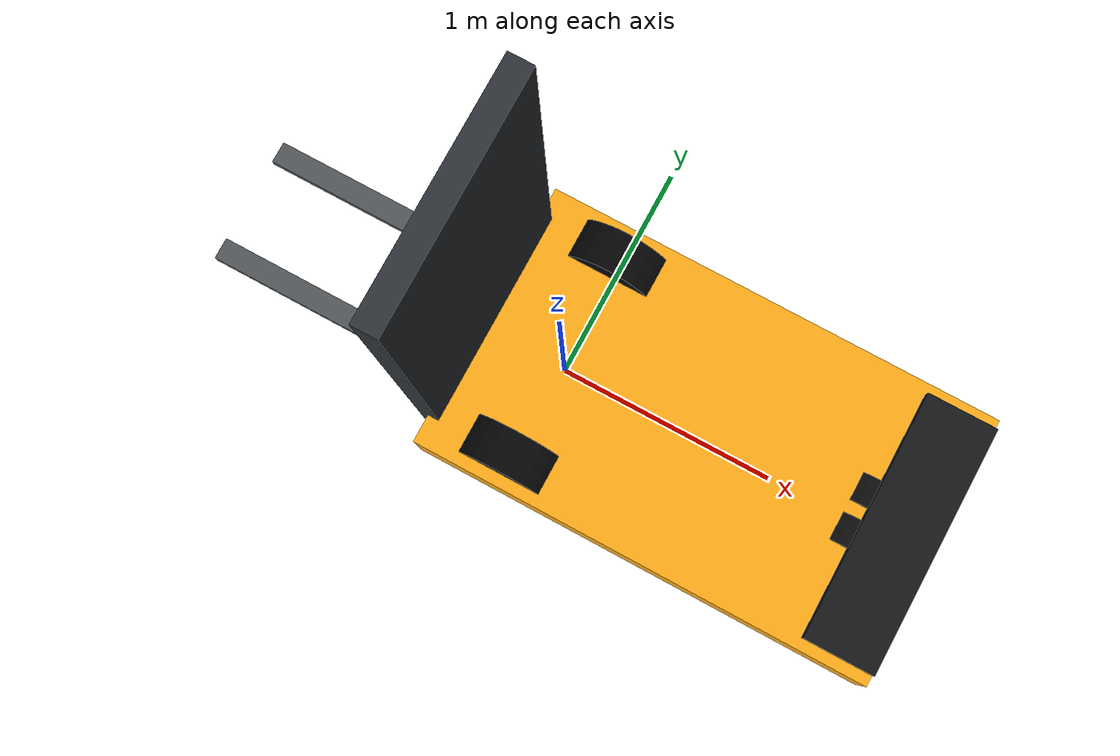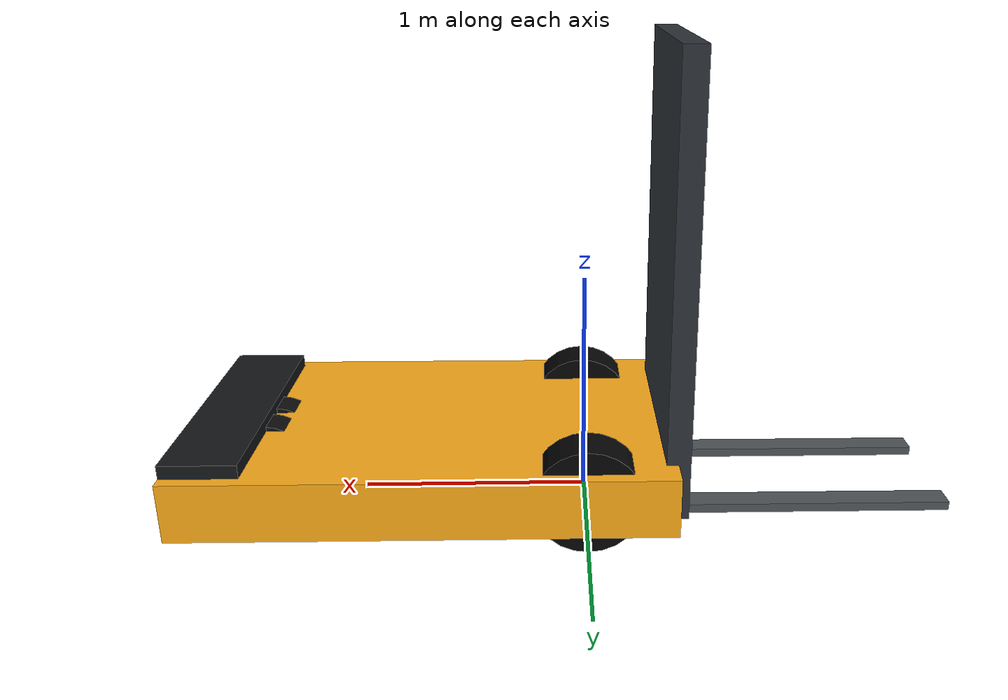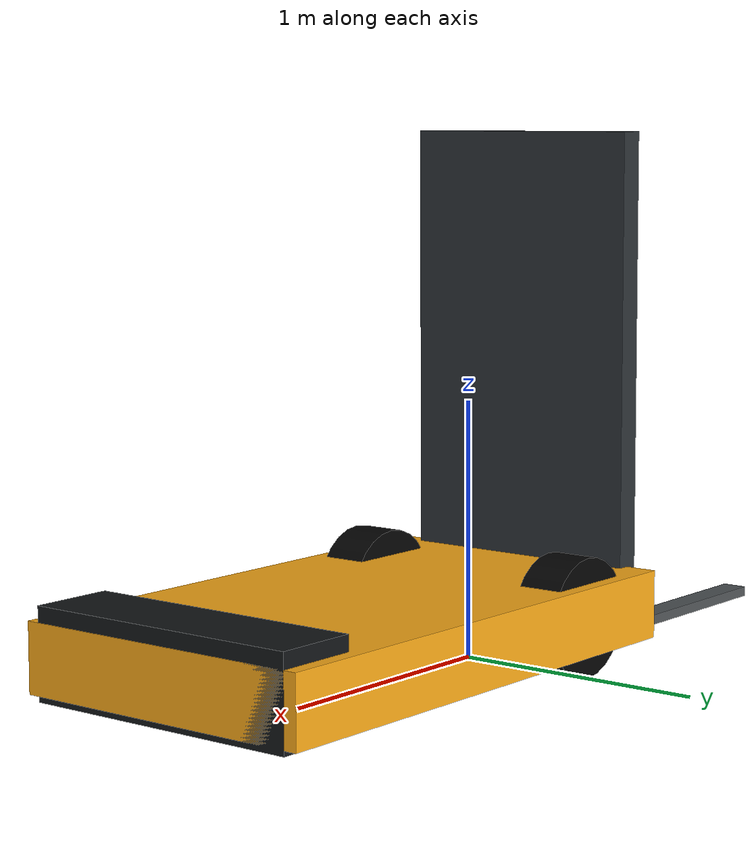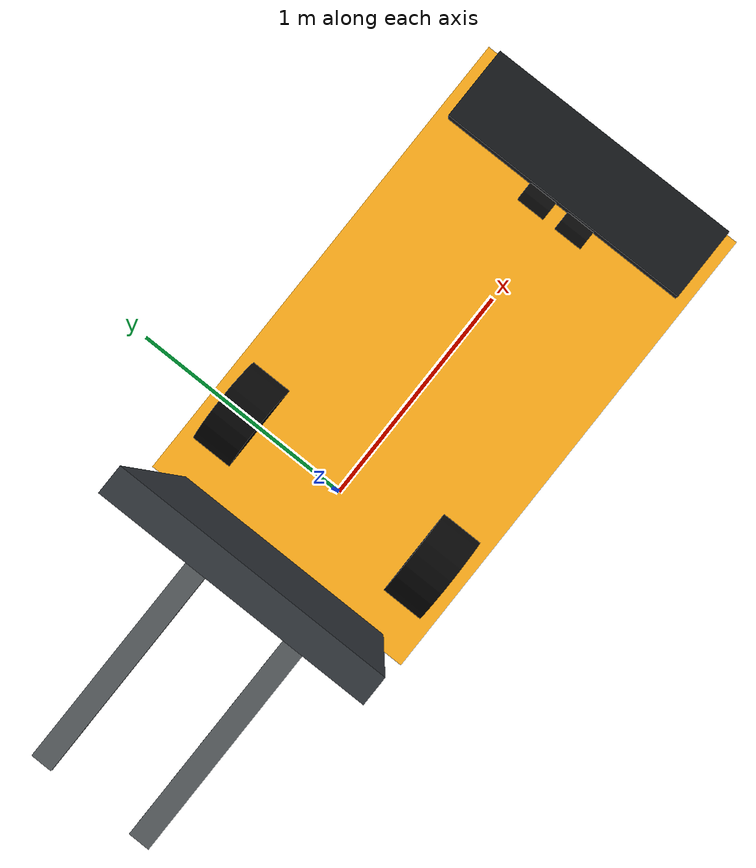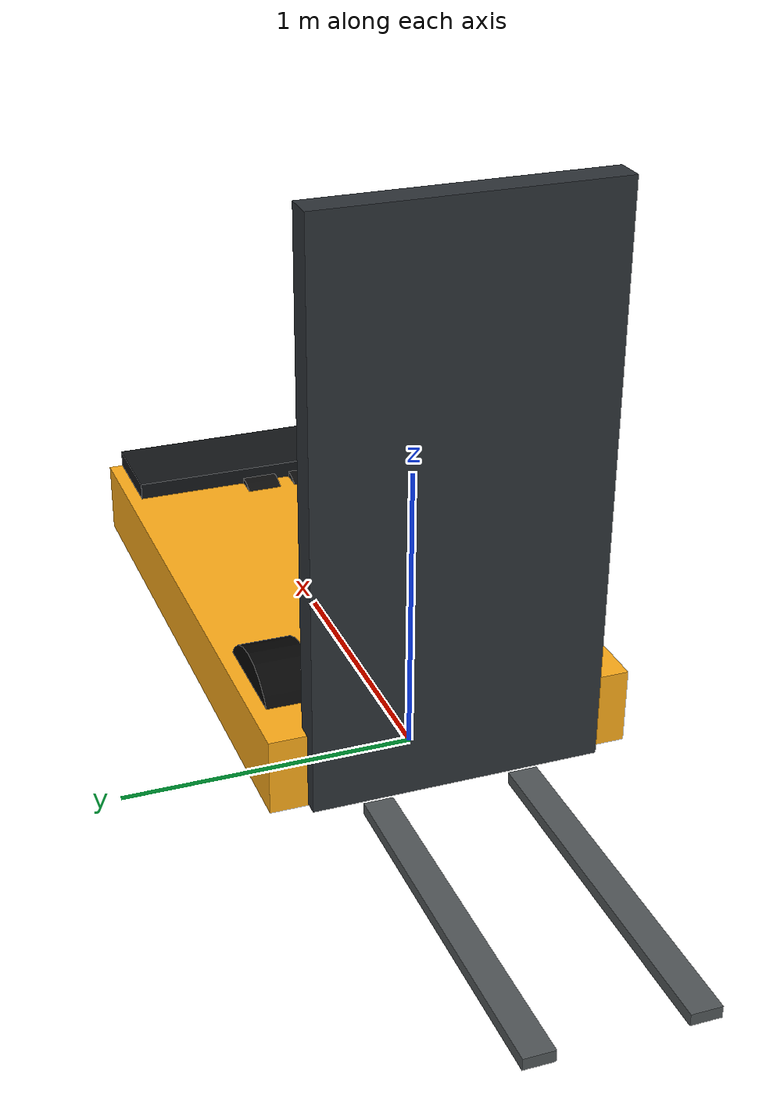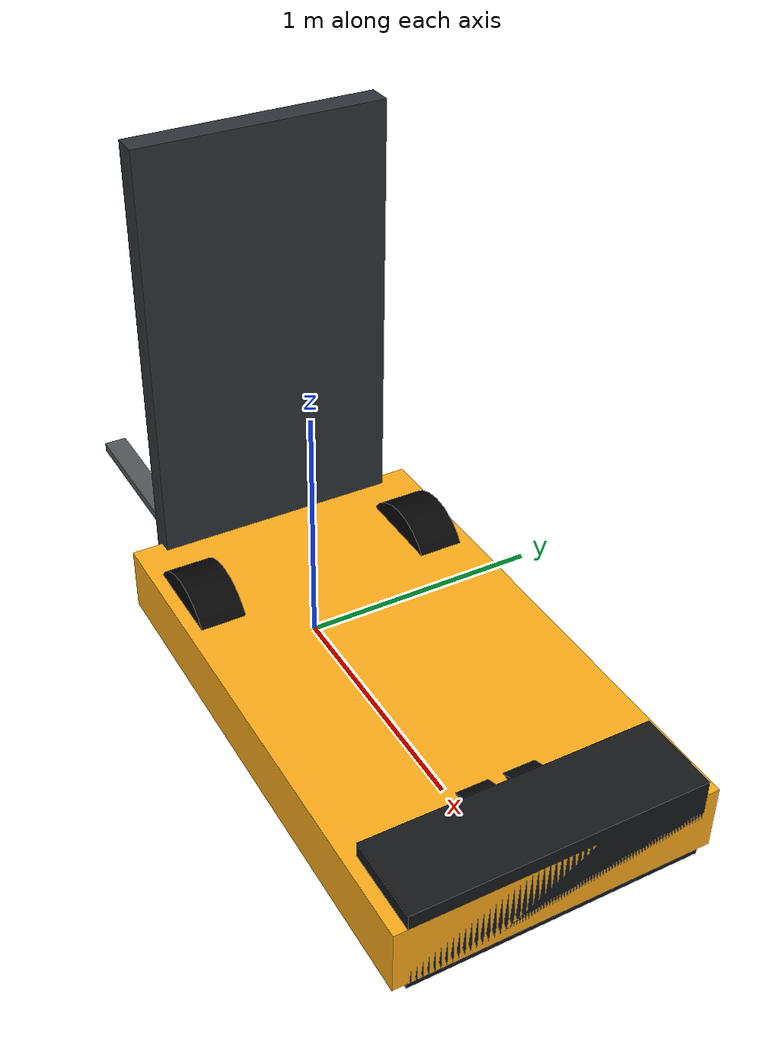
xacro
<?xml version="1.0"?>
<robot xmlns:xacro="http://www.ros.org/wiki/xacro" name="forklift_diff_drive">
  <xacro:arg name="gazebo_cmd_vel_topic" default="cmd_vel"/>
  <xacro:arg name="gazebo_scan_topic" default="scan"/>

  <!-- 2MKC20M30LV205 geometry. base_link is the drive-axle center and -X points to the forks. -->
  <xacro:property name="drive_wheel_radius" value="0.2285"/>
  <xacro:property name="drive_wheel_width" value="0.178"/>
  <xacro:property name="drive_track_width" value="0.937"/>
  <xacro:property name="support_wheel_radius" value="0.1905"/>
  <xacro:property name="support_wheel_width" value="0.127"/>
  <xacro:property name="support_track_width" value="0.183"/>
  <xacro:property name="wheel_base" value="1.40"/>
  <xacro:property name="base_z" value="${drive_wheel_radius}"/>
  <xacro:property name="body_length" value="2.079"/>
  <xacro:property name="body_width" value="1.220"/>
  <xacro:property name="body_center_x" value="0.6695"/>
  <xacro:property name="mast_x" value="-0.370"/>
  <xacro:property name="fork_length" value="1.220"/>
  <xacro:property name="fork_center_x" value="-0.980"/>

  <link name="base_footprint"/>

  <joint name="base_joint" type="fixed">
    <parent link="base_footprint"/>
    <child link="base_link"/>
    <origin xyz="0 0 ${base_z}" rpy="0 0 0"/>
  </joint>

  <link name="base_link">
    <inertial>
      <origin xyz="${body_center_x} 0 0"/>
      <mass value="28.0"/>
      <inertia ixx="1.20" ixy="0.0" ixz="0.0" iyy="3.40" iyz="0.0" izz="3.80"/>
    </inertial>
    <visual name="body_visual">
      <origin xyz="${body_center_x} 0 0" rpy="0 0 0"/>
      <geometry>
        <box size="${body_length} ${body_width} 0.26"/>
      </geometry>
      <material name="forklift_yellow">
        <color rgba="1.0 0.68 0.10 1.0"/>
      </material>
    </visual>
    <collision name="body_collision">
      <origin xyz="${body_center_x} 0 0" rpy="0 0 0"/>
      <geometry>
        <box size="${body_length} ${body_width} 0.26"/>
      </geometry>
    </collision>

    <visual name="counterweight_visual">
      <origin xyz="1.55 0 0.02" rpy="0 0 0"/>
      <geometry>
        <box size="0.318 1.12 0.34"/>
      </geometry>
      <material name="dark_gray">
        <color rgba="0.08 0.09 0.10 1.0"/>
      </material>
    </visual>
    <collision name="counterweight_collision">
      <origin xyz="1.55 0 0.02" rpy="0 0 0"/>
      <geometry>
        <box size="0.318 1.12 0.34"/>
      </geometry>
    </collision>

    <visual name="mast_visual">
      <origin xyz="${mast_x} 0 0.835" rpy="0 0 0"/>
      <geometry>
        <box size="0.10 0.97 1.917"/>
      </geometry>
      <material name="mast_gray">
        <color rgba="0.18 0.20 0.22 1.0"/>
      </material>
    </visual>
    <collision name="mast_collision">
      <origin xyz="${mast_x} 0 0.835" rpy="0 0 0"/>
      <geometry>
        <box size="0.10 0.97 1.917"/>
      </geometry>
    </collision>

    <visual name="fork_left_visual">
      <origin xyz="${fork_center_x} 0.25 -0.1885" rpy="0 0 0"/>
      <geometry>
        <box size="${fork_length} 0.10 0.04"/>
      </geometry>
      <material name="fork_gray">
        <color rgba="0.32 0.34 0.35 1.0"/>
      </material>
    </visual>
    <collision name="fork_left_collision">
      <origin xyz="${fork_center_x} 0.25 -0.1885" rpy="0 0 0"/>
      <geometry>
        <box size="${fork_length} 0.10 0.04"/>
      </geometry>
    </collision>

    <visual name="fork_right_visual">
      <origin xyz="${fork_center_x} -0.25 -0.1885" rpy="0 0 0"/>
      <geometry>
        <box size="${fork_length} 0.10 0.04"/>
      </geometry>
      <material name="fork_gray"/>
    </visual>
    <collision name="fork_right_collision">
      <origin xyz="${fork_center_x} -0.25 -0.1885" rpy="0 0 0"/>
      <geometry>
        <box size="${fork_length} 0.10 0.04"/>
      </geometry>
    </collision>
  </link>

  <link name="left_wheel_link">
    <inertial>
      <origin xyz="0 0 0"/>
      <mass value="2.0"/>
      <inertia ixx="0.018" ixy="0.0" ixz="0.0" iyy="0.032" iyz="0.0" izz="0.018"/>
    </inertial>
    <visual>
      <origin xyz="0 0 0" rpy="1.57079632679 0 0"/>
      <geometry>
        <cylinder radius="${drive_wheel_radius}" length="${drive_wheel_width}"/>
      </geometry>
      <material name="wheel_black">
        <color rgba="0.02 0.02 0.02 1.0"/>
      </material>
    </visual>
    <collision>
      <origin xyz="0 0 0" rpy="1.57079632679 0 0"/>
      <geometry>
        <cylinder radius="${drive_wheel_radius}" length="${drive_wheel_width}"/>
      </geometry>
    </collision>
  </link>

  <joint name="left_wheel_joint" type="continuous">
    <parent link="base_link"/>
    <child link="left_wheel_link"/>
    <origin xyz="0 ${drive_track_width / 2.0} 0" rpy="0 0 0"/>
    <axis xyz="0 1 0"/>
  </joint>

  <link name="right_wheel_link">
    <inertial>
      <origin xyz="0 0 0"/>
      <mass value="2.0"/>
      <inertia ixx="0.018" ixy="0.0" ixz="0.0" iyy="0.032" iyz="0.0" izz="0.018"/>
    </inertial>
    <visual>
      <origin xyz="0 0 0" rpy="1.57079632679 0 0"/>
      <geometry>
        <cylinder radius="${drive_wheel_radius}" length="${drive_wheel_width}"/>
      </geometry>
      <material name="wheel_black"/>
    </visual>
    <collision>
      <origin xyz="0 0 0" rpy="1.57079632679 0 0"/>
      <geometry>
        <cylinder radius="${drive_wheel_radius}" length="${drive_wheel_width}"/>
      </geometry>
    </collision>
  </link>

  <joint name="right_wheel_joint" type="continuous">
    <parent link="base_link"/>
    <child link="right_wheel_link"/>
    <origin xyz="0 ${-drive_track_width / 2.0} 0" rpy="0 0 0"/>
    <axis xyz="0 1 0"/>
  </joint>

  <link name="left_support_wheel_link">
    <inertial>
      <origin xyz="0 0 0"/>
      <mass value="1.0"/>
      <inertia ixx="0.01" ixy="0.0" ixz="0.0" iyy="0.01" iyz="0.0" izz="0.01"/>
    </inertial>
    <visual>
      <origin xyz="0 0 0" rpy="1.57079632679 0 0"/>
      <geometry>
        <cylinder radius="${support_wheel_radius}" length="${support_wheel_width}"/>
      </geometry>
      <material name="caster_dark">
        <color rgba="0.05 0.05 0.05 1.0"/>
      </material>
    </visual>
    <collision>
      <origin xyz="0 0 0" rpy="1.57079632679 0 0"/>
      <geometry>
        <cylinder radius="${support_wheel_radius}" length="${support_wheel_width}"/>
      </geometry>
    </collision>
  </link>

  <joint name="left_support_wheel_joint" type="fixed">
    <parent link="base_link"/>
    <child link="left_support_wheel_link"/>
    <origin xyz="${wheel_base} ${support_track_width / 2.0} ${support_wheel_radius - drive_wheel_radius}" rpy="0 0 0"/>
  </joint>

  <link name="right_support_wheel_link">
    <inertial>
      <origin xyz="0 0 0"/>
      <mass value="1.0"/>
      <inertia ixx="0.01" ixy="0.0" ixz="0.0" iyy="0.01" iyz="0.0" izz="0.01"/>
    </inertial>
    <visual>
      <origin xyz="0 0 0" rpy="1.57079632679 0 0"/>
      <geometry>
        <cylinder radius="${support_wheel_radius}" length="${support_wheel_width}"/>
      </geometry>
      <material name="caster_dark"/>
    </visual>
    <collision>
      <origin xyz="0 0 0" rpy="1.57079632679 0 0"/>
      <geometry>
        <cylinder radius="${support_wheel_radius}" length="${support_wheel_width}"/>
      </geometry>
    </collision>
  </link>

  <joint name="right_support_wheel_joint" type="fixed">
    <parent link="base_link"/>
    <child link="right_support_wheel_link"/>
    <origin xyz="${wheel_base} ${-support_track_width / 2.0} ${support_wheel_radius - drive_wheel_radius}" rpy="0 0 0"/>
  </joint>

  <link name="base_scan">
    <inertial>
      <origin xyz="0 0 0"/>
      <mass value="0.2"/>
      <inertia ixx="0.001" ixy="0.0" ixz="0.0" iyy="0.001" iyz="0.0" izz="0.001"/>
    </inertial>
    <visual>
      <geometry>
        <cylinder radius="0.065" length="0.055"/>
      </geometry>
      <material name="laser_blue">
        <color rgba="0.05 0.24 0.80 1.0"/>
      </material>
    </visual>
    <collision>
      <geometry>
        <cylinder radius="0.065" length="0.055"/>
      </geometry>
    </collision>
  </link>

  <joint name="base_scan_joint" type="fixed">
    <parent link="base_link"/>
    <child link="base_scan"/>
    <origin xyz="0 0 0" rpy="0 0 0"/>
  </joint>

  <gazebo reference="base_link">
    <material>Gazebo/Yellow</material>
  </gazebo>

  <gazebo reference="left_wheel_link">
    <material>Gazebo/Black</material>
    <mu1>1.0</mu1>
    <mu2>1.0</mu2>
  </gazebo>

  <gazebo reference="right_wheel_link">
    <material>Gazebo/Black</material>
    <mu1>1.0</mu1>
    <mu2>1.0</mu2>
  </gazebo>

  <gazebo reference="left_support_wheel_link">
    <material>Gazebo/Black</material>
    <mu1>0.01</mu1>
    <mu2>0.01</mu2>
  </gazebo>

  <gazebo reference="right_support_wheel_link">
    <material>Gazebo/Black</material>
    <mu1>0.01</mu1>
    <mu2>0.01</mu2>
  </gazebo>

  <gazebo reference="base_scan">
    <sensor name="forklift_laser" type="ray">
      <always_on>true</always_on>
      <visualize>true</visualize>
      <update_rate>10</update_rate>
      <ray>
        <scan>
          <horizontal>
            <samples>720</samples>
            <resolution>1</resolution>
            <min_angle>-3.14159</min_angle>
            <max_angle>3.14159</max_angle>
          </horizontal>
        </scan>
        <range>
          <min>0.12</min>
          <max>8.0</max>
          <resolution>0.01</resolution>
        </range>
        <noise>
          <type>gaussian</type>
          <mean>0.0</mean>
          <stddev>0.01</stddev>
        </noise>
      </ray>
      <plugin name="forklift_laserscan" filename="libgazebo_ros_ray_sensor.so">
        <ros>
          <remapping>~/out:=$(arg gazebo_scan_topic)</remapping>
        </ros>
        <output_type>sensor_msgs/LaserScan</output_type>
        <frame_name>base_scan</frame_name>
      </plugin>
    </sensor>
  </gazebo>

  <gazebo>
    <plugin name="forklift_diff_drive" filename="libgazebo_ros_diff_drive.so">
      <ros>
        <remapping>cmd_vel:=$(arg gazebo_cmd_vel_topic)</remapping>
      </ros>
      <update_rate>50</update_rate>
      <left_joint>left_wheel_joint</left_joint>
      <right_joint>right_wheel_joint</right_joint>
      <wheel_separation>${drive_track_width}</wheel_separation>
      <wheel_diameter>${2.0 * drive_wheel_radius}</wheel_diameter>
      <max_wheel_torque>80</max_wheel_torque>
      <max_wheel_acceleration>1.0</max_wheel_acceleration>
      <publish_odom>true</publish_odom>
      <publish_odom_tf>true</publish_odom_tf>
      <publish_wheel_tf>false</publish_wheel_tf>
      <odometry_topic>odom</odometry_topic>
      <odometry_frame>odom</odometry_frame>
      <robot_base_frame>base_footprint</robot_base_frame>
    </plugin>

    <plugin name="forklift_joint_state" filename="libgazebo_ros_joint_state_publisher.so">
      <ros>
        <remapping>~/out:=joint_states</remapping>
      </ros>
      <update_rate>50</update_rate>
      <joint_name>left_wheel_joint</joint_name>
      <joint_name>right_wheel_joint</joint_name>
    </plugin>
  </gazebo>
</robot>
